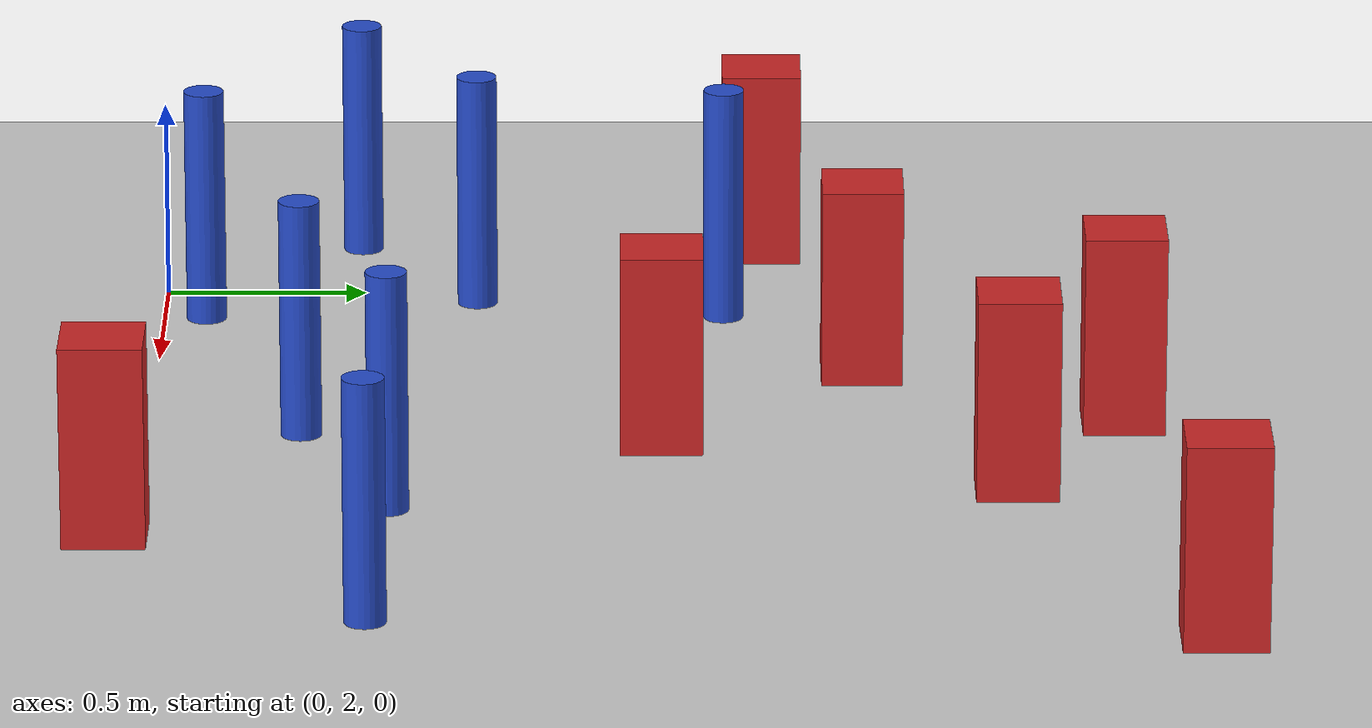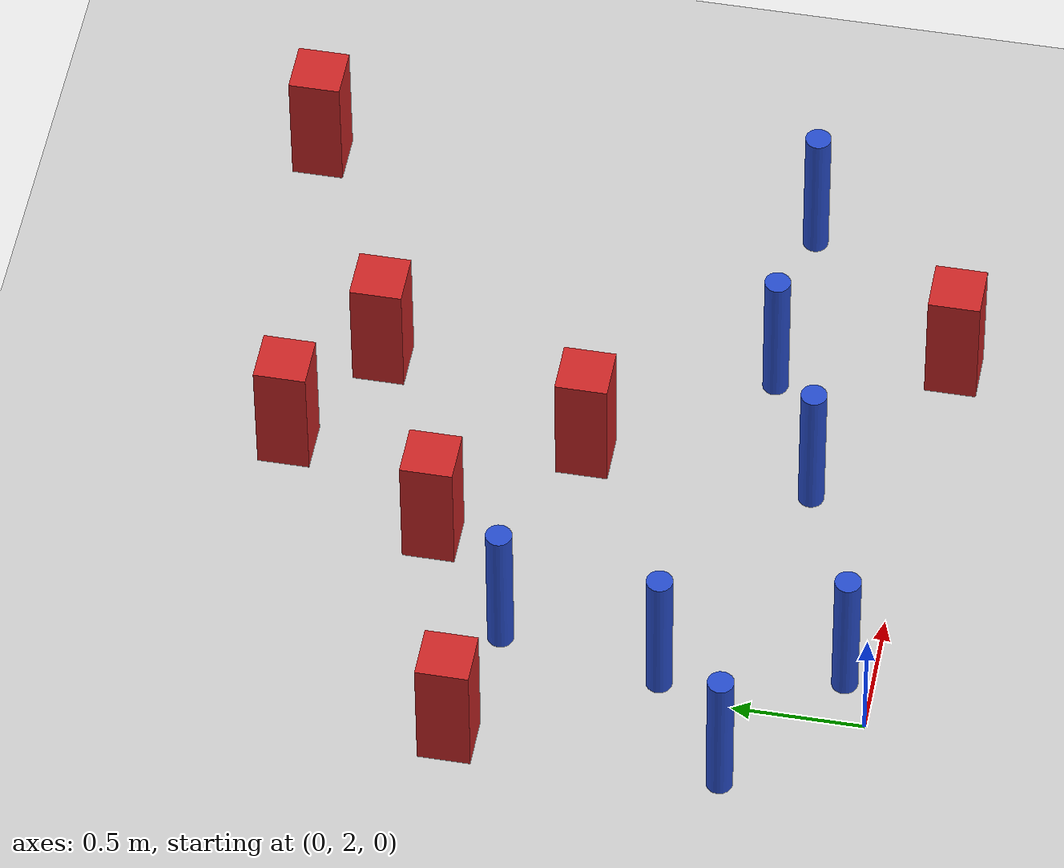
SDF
<sdf version="1.6">
 <world name="default">
  <model name="ground_plane">
   <static>1</static>
   <link name="link">
    <collision name="collision">
     <geometry><plane><normal>0 0 1</normal><size>100 100</size></plane></geometry>
     <surface><friction><ode><mu>100</mu><mu2>50</mu2></ode></friction></surface>
    </collision>
    <visual name="visual">
     <cast_shadows>0</cast_shadows>
     <geometry><plane><normal>0 0 1</normal><size>100 100</size></plane></geometry>
     <material>
      <ambient>1.0 1.0 1.0 1.0</ambient>
      <diffuse>0.8 0.8 0.8 1.0</diffuse>
      <specular>0.01 0.01 0.01 1.000000</specular>
     </material>
    </visual>
   </link>
  </model>
  <model name="square_post_obstacle13">
   <static>true</static>
   <pose>1.10403048548 3.2495813458 8.22691968438e-08 7.2212513382e-06 -7.54495500217e-07 2.29674213826e-05</pose>
   <link name="link">
    <pose>0 0 0.25 0 -0 0</pose>
    <inertial>
     <mass>100</mass>
     <inertia>
      <ixx>0.166667</ixx>
      <ixy>0</ixy>
      <ixz>0</ixz>
      <iyy>0.166667</iyy>
      <iyz>0</iyz>
      <izz>0.166667</izz>
     </inertia>
    </inertial>
    <collision name="collision"><geometry><box><size>.2 .2 .5</size></box></geometry></collision>
    <visual name="visual">
     <geometry><box><size>.2 .2 .5</size></box></geometry>
     <material>
      <script><name>Gazebo/Red</name><uri>file://media/materials/scripts/gazebo.material</uri></script>
     </material>
    </visual>
   </link>
  </model>
  <model name="square_post_obstacle20">
   <static>true</static>
   <pose>0.602518353487 3.74456204148 8.22691968438e-08 7.2212513382e-06 -7.54495500217e-07 2.29674213826e-05</pose>
   <link name="link">
    <pose>0 0 0.25 0 -0 0</pose>
    <inertial>
     <mass>100</mass>
     <inertia>
      <ixx>0.166667</ixx>
      <ixy>0</ixy>
      <ixz>0</ixz>
      <iyy>0.166667</iyy>
      <iyz>0</iyz>
      <izz>0.166667</izz>
     </inertia>
    </inertial>
    <collision name="collision"><geometry><box><size>.2 .2 .5</size></box></geometry></collision>
    <visual name="visual">
     <geometry><box><size>.2 .2 .5</size></box></geometry>
     <material>
      <script><name>Gazebo/Red</name><uri>file://media/materials/scripts/gazebo.material</uri></script>
     </material>
    </visual>
   </link>
  </model>
  <model name="square_post_obstacle31">
   <static>true</static>
   <pose>2.43105017646 4.54562582871 8.22691968438e-08 7.2212513382e-06 -7.54495500217e-07 2.29674213826e-05</pose>
   <link name="link">
    <pose>0 0 0.25 0 -0 0</pose>
    <inertial>
     <mass>100</mass>
     <inertia>
      <ixx>0.166667</ixx>
      <ixy>0</ixy>
      <ixz>0</ixz>
      <iyy>0.166667</iyy>
      <iyz>0</iyz>
      <izz>0.166667</izz>
     </inertia>
    </inertial>
    <collision name="collision"><geometry><box><size>.2 .2 .5</size></box></geometry></collision>
    <visual name="visual">
     <geometry><box><size>.2 .2 .5</size></box></geometry>
     <material>
      <script><name>Gazebo/Red</name><uri>file://media/materials/scripts/gazebo.material</uri></script>
     </material>
    </visual>
   </link>
  </model>
  <model name="pole_obstacle27">
   <static>true</static>
   <pose>1.57937318762 2.5967450185 2.88873142074e-08 -9.90536689791e-09 4.6021994899e-07 -1.20965994959e-07</pose>
   <link name="link">
    <pose>0 0 0.3 0 -0 0</pose>
    <inertial>
     <mass>1</mass>
     <inertia><ixx>0.145833</ixx><ixy>0</ixy><ixz>0</ixz><iyy>0.145833</iyy><iyz>0</iyz><izz>0.125</izz></inertia>
    </inertial>
    <collision name="collision">
     <geometry><cylinder><radius>0.05</radius><length>.6</length></cylinder></geometry>
    </collision>
    <visual name="visual">
     <geometry><cylinder><radius>0.05</radius><length>.6</length></cylinder></geometry>
     <material>
      <script><name>Gazebo/Blue</name><uri>file://media/materials/scripts/gazebo.material</uri></script>
     </material>
    </visual>
   </link>
  </model>
  <model name="pole_obstacle28">
   <static>true</static>
   <pose>0.0711021066911 2.78482618308 2.88873142074e-08 -9.90536692479e-09 4.60219948927e-07 -1.20965994989e-07</pose>
   <link name="link">
    <pose>0 0 0.3 0 -0 0</pose>
    <inertial>
     <mass>1</mass>
     <inertia><ixx>0.145833</ixx><ixy>0</ixy><ixz>0</ixz><iyy>0.145833</iyy><iyz>0</iyz><izz>0.125</izz></inertia>
    </inertial>
    <collision name="collision">
     <geometry><cylinder><radius>0.05</radius><length>.6</length></cylinder></geometry>
    </collision>
    <visual name="visual">
     <geometry><cylinder><radius>0.05</radius><length>.6</length></cylinder></geometry>
     <material>
      <script><name>Gazebo/Blue</name><uri>file://media/materials/scripts/gazebo.material</uri></script>
     </material>
    </visual>
   </link>
  </model>
  <model name="pole_obstacle104">
   <static>true</static>
   <pose>0.189261439396 2.10461520238 2.88873142074e-08 -9.90536689569e-09 4.60219948995e-07 -1.20965994955e-07</pose>
   <link name="link">
    <pose>0 0 0.3 0 -0 0</pose>
    <inertial>
     <mass>1</mass>
     <inertia><ixx>0.145833</ixx><ixy>0</ixy><ixz>0</ixz><iyy>0.145833</iyy><iyz>0</iyz><izz>0.125</izz></inertia>
    </inertial>
    <collision name="collision">
     <geometry><cylinder><radius>0.05</radius><length>.6</length></cylinder></geometry>
    </collision>
    <visual name="visual">
     <geometry><cylinder><radius>0.05</radius><length>.6</length></cylinder></geometry>
     <material>
      <script><name>Gazebo/Blue</name><uri>file://media/materials/scripts/gazebo.material</uri></script>
     </material>
    </visual>
   </link>
  </model>
  <model name="square_post_obstacle130">
   <static>true</static>
   <pose>1.75516349228 1.9314198137 8.22691968438e-08 7.2212513382e-06 -7.54495500217e-07 2.29674213826e-05</pose>
   <link name="link">
    <pose>0 0 0.25 0 -0 0</pose>
    <inertial>
     <mass>100</mass>
     <inertia>
      <ixx>0.166667</ixx>
      <ixy>0</ixy>
      <ixz>0</ixz>
      <iyy>0.166667</iyy>
      <iyz>0</iyz>
      <izz>0.166667</izz>
     </inertia>
    </inertial>
    <collision name="collision"><geometry><box><size>.2 .2 .5</size></box></geometry></collision>
    <visual name="visual">
     <geometry><box><size>.2 .2 .5</size></box></geometry>
     <material>
      <script><name>Gazebo/Red</name><uri>file://media/materials/scripts/gazebo.material</uri></script>
     </material>
    </visual>
   </link>
  </model>
  <model name="pole_obstacle150">
   <static>true</static>
   <pose>0.179828503936 3.40505107024 2.88873142074e-08 -9.90536689569e-09 4.60219948995e-07 -1.20965994955e-07</pose>
   <link name="link">
    <pose>0 0 0.3 0 -0 0</pose>
    <inertial>
     <mass>1</mass>
     <inertia><ixx>0.145833</ixx><ixy>0</ixy><ixz>0</ixz><iyy>0.145833</iyy><iyz>0</iyz><izz>0.125</izz></inertia>
    </inertial>
    <collision name="collision">
     <geometry><cylinder><radius>0.05</radius><length>.6</length></cylinder></geometry>
    </collision>
    <visual name="visual">
     <geometry><cylinder><radius>0.05</radius><length>.6</length></cylinder></geometry>
     <material>
      <script><name>Gazebo/Blue</name><uri>file://media/materials/scripts/gazebo.material</uri></script>
     </material>
    </visual>
   </link>
  </model>
  <model name="square_post_obstacle146">
   <static>true</static>
   <pose>1.42907088368 4.10194704396 8.22691968438e-08 7.2212513382e-06 -7.54495500217e-07 2.29674213826e-05</pose>
   <link name="link">
    <pose>0 0 0.25 0 -0 0</pose>
    <inertial>
     <mass>100</mass>
     <inertia>
      <ixx>0.166667</ixx>
      <ixy>0</ixy>
      <ixz>0</ixz>
      <iyy>0.166667</iyy>
      <iyz>0</iyz>
      <izz>0.166667</izz>
     </inertia>
    </inertial>
    <collision name="collision"><geometry><box><size>.2 .2 .5</size></box></geometry></collision>
    <visual name="visual">
     <geometry><box><size>.2 .2 .5</size></box></geometry>
     <material>
      <script><name>Gazebo/Red</name><uri>file://media/materials/scripts/gazebo.material</uri></script>
     </material>
    </visual>
   </link>
  </model>
  <model name="pole_obstacle161">
   <static>true</static>
   <pose>2.32857335285 2.56291982243 2.88873142074e-08 -9.90536690232e-09 4.6021994898e-07 -1.20965994968e-07</pose>
   <link name="link">
    <pose>0 0 0.3 0 -0 0</pose>
    <inertial>
     <mass>1</mass>
     <inertia><ixx>0.145833</ixx><ixy>0</ixy><ixz>0</ixz><iyy>0.145833</iyy><iyz>0</iyz><izz>0.125</izz></inertia>
    </inertial>
    <collision name="collision">
     <geometry><cylinder><radius>0.05</radius><length>.6</length></cylinder></geometry>
    </collision>
    <visual name="visual">
     <geometry><cylinder><radius>0.05</radius><length>.6</length></cylinder></geometry>
     <material>
      <script><name>Gazebo/Blue</name><uri>file://media/materials/scripts/gazebo.material</uri></script>
     </material>
    </visual>
   </link>
  </model>
  <model name="pole_obstacle162">
   <static>true</static>
   <pose>-0.353130419857 2.48496953698 2.88873142074e-08 -9.90536689663e-09 4.60219948993e-07 -1.20965994959e-07</pose>
   <link name="link">
    <pose>0 0 0.3 0 -0 0</pose>
    <inertial>
     <mass>1</mass>
     <inertia><ixx>0.145833</ixx><ixy>0</ixy><ixz>0</ixz><iyy>0.145833</iyy><iyz>0</iyz><izz>0.125</izz></inertia>
    </inertial>
    <collision name="collision">
     <geometry><cylinder><radius>0.05</radius><length>.6</length></cylinder></geometry>
    </collision>
    <visual name="visual">
     <geometry><cylinder><radius>0.05</radius><length>.6</length></cylinder></geometry>
     <material>
      <script><name>Gazebo/Blue</name><uri>file://media/materials/scripts/gazebo.material</uri></script>
     </material>
    </visual>
   </link>
  </model>
  <model name="square_post_obstacle161">
   <static>true</static>
   <pose>-0.327894267826 3.50392063465 8.22691968438e-08 7.2212513382e-06 -7.54495500217e-07 2.29674213826e-05</pose>
   <link name="link">
    <pose>0 0 0.25 0 -0 0</pose>
    <inertial>
     <mass>100</mass>
     <inertia>
      <ixx>0.166667</ixx>
      <ixy>0</ixy>
      <ixz>0</ixz>
      <iyy>0.166667</iyy>
      <iyz>0</iyz>
      <izz>0.166667</izz>
     </inertia>
    </inertial>
    <collision name="collision"><geometry><box><size>.2 .2 .5</size></box></geometry></collision>
    <visual name="visual">
     <geometry><box><size>.2 .2 .5</size></box></geometry>
     <material>
      <script><name>Gazebo/Red</name><uri>file://media/materials/scripts/gazebo.material</uri></script>
     </material>
    </visual>
   </link>
  </model>
  <model name="square_post_obstacle176">
   <static>true</static>
   <pose>0.960882808286 4.37645127541 8.22691968438e-08 7.2212513382e-06 -7.54495500217e-07 2.29674213826e-05</pose>
   <link name="link">
    <pose>0 0 0.25 0 -0 0</pose>
    <inertial>
     <mass>100</mass>
     <inertia>
      <ixx>0.166667</ixx>
      <ixy>0</ixy>
      <ixz>0</ixz>
      <iyy>0.166667</iyy>
      <iyz>0</iyz>
      <izz>0.166667</izz>
     </inertia>
    </inertial>
    <collision name="collision"><geometry><box><size>.2 .2 .5</size></box></geometry></collision>
    <visual name="visual">
     <geometry><box><size>.2 .2 .5</size></box></geometry>
     <material>
      <script><name>Gazebo/Red</name><uri>file://media/materials/scripts/gazebo.material</uri></script>
     </material>
    </visual>
   </link>
  </model>
  <model name="pole_obstacle224">
   <static>true</static>
   <pose>1.05246000913 2.37204002041 2.88873142074e-08 -9.90536689791e-09 4.6021994899e-07 -1.20965994959e-07</pose>
   <link name="link">
    <pose>0 0 0.3 0 -0 0</pose>
    <inertial>
     <mass>1</mass>
     <inertia><ixx>0.145833</ixx><ixy>0</ixy><ixz>0</ixz><iyy>0.145833</iyy><iyz>0</iyz><izz>0.125</izz></inertia>
    </inertial>
    <collision name="collision">
     <geometry><cylinder><radius>0.05</radius><length>.6</length></cylinder></geometry>
    </collision>
    <visual name="visual">
     <geometry><cylinder><radius>0.05</radius><length>.6</length></cylinder></geometry>
     <material>
      <script><name>Gazebo/Blue</name><uri>file://media/materials/scripts/gazebo.material</uri></script>
     </material>
    </visual>
   </link>
  </model>
 </world>
</sdf>
